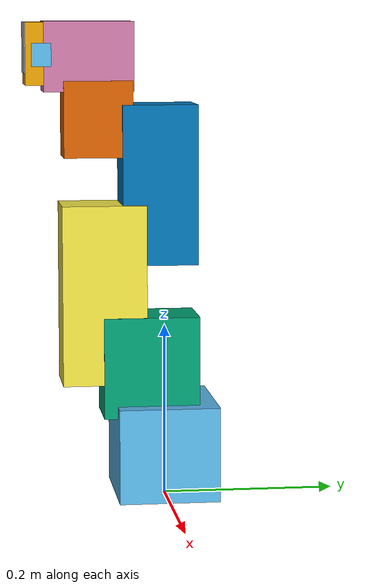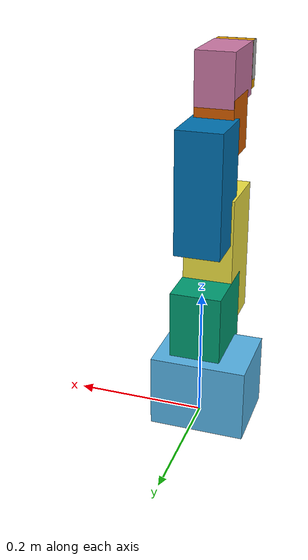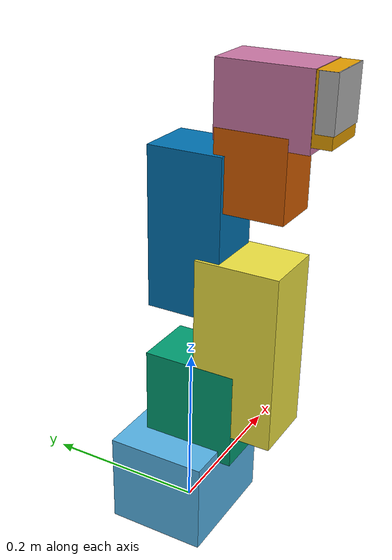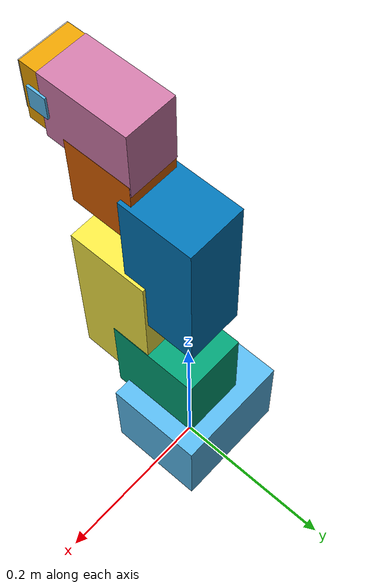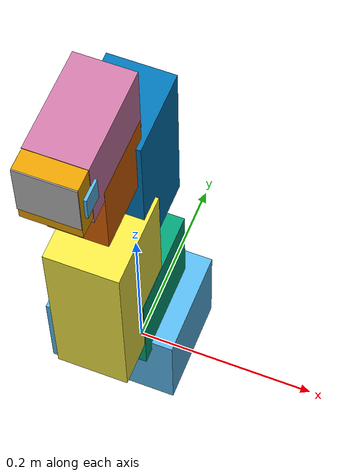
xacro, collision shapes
<?xml version="1.0"?>
<robot xmlns:xacro="http://www.ros.org/wiki/xacro" name="myCobot320">

  <xacro:property name="width" value=".2" />

  <xacro:property name="joint_effort" value="56.0" />
  <xacro:property name="joint_velocity" value="2.792527" />
  <xacro:property name="joint_damping" value="1.0" />
  <xacro:property name="joint_friction" value="0.5" />
  <xacro:property name="base_mass" value="0.12" />
  <xacro:property name="link1_mass" value="0.12" />
  <xacro:property name="link2_mass" value="0.19" />
  <xacro:property name="link3_mass" value="0.16" />
  <xacro:property name="link4_mass" value="0.124" />
  <xacro:property name="link5_mass" value="0.11" />
  <xacro:property name="link6_mass" value="0.0739" />
  <xacro:property name="flange_mass" value="0.035" />
  <xacro:property name="gripper_damping" value="5.0" />
  <xacro:property name="gripper_friction" value="5.0" />
  <xacro:property name="gripper_base_mass" value="0.03" />
  <xacro:property name="gripper_finger_mass" value="0.008" />

  <xacro:macro name="link_inertial" params="xg yg zg mass ixx iyy izz">
    <inertial>
      <origin xyz="${xg} ${yg} ${zg}" rpy="0 0 0" />
      <mass value="${mass}" />
      <inertia ixx="${ixx}" ixy="0.0" ixz="0.0" iyy="${iyy}" iyz="0.0" izz="${izz}" />
    </inertial>
  </xacro:macro>

  <!-- World link -->
  <link name="world" />
  <!-- Junta fija entre world y base_link -->
  <joint name="fixed" type="fixed">
    <parent link="world" />
    <child link="base_link" />
    <origin xyz="0 0 0" rpy="0 0 0" />
  </joint>

  <link name="base_link">
    <xacro:link_inertial xg="0" yg="0" zg="0" mass="${base_mass}" ixx="0.000148" iyy="0.000148"
      izz="0.000096" />

    <visual>
      <geometry>
        <mesh filename="package://clase5/robot_description/mycobot_320_m5_2022/base.dae" />
      </geometry>
      <origin xyz="0.0 0 0 " rpy=" 0 0 1.5708" />
    </visual>
    <collision>
      <geometry>
        <box size="0.11712 0.14372 0.1104" />
      </geometry>
      <origin xyz="-0.01064 0.00002 0.05538" rpy="0 0 1.5708" />
    </collision>
  </link>

  <link name="link1">
    <xacro:link_inertial xg="0" yg="0" zg="-0.078" mass="${link1_mass}" ixx="0.000148"
      iyy="0.000148" izz="0.000096" />

    <visual>
      <geometry>
        <mesh filename="package://clase5/robot_description/mycobot_320_m5_2022/link1.dae" />
      </geometry>

      <origin xyz="0.0 0.0 -0.078 " rpy=" 0 0 1.5708" />
    </visual>
    <collision>
      <geometry>
        <box size="0.1114 0.07697 0.11769" />
      </geometry>
      <origin xyz="-0.00005 -0.01817 -0.01896" rpy="0 0 1.5708" />
    </collision>
  </link>

  <link name="link2">
    <xacro:link_inertial xg="0" yg="0" zg="-0.04" mass="${link2_mass}" ixx="0.000148" iyy="0.000148"
      izz="0.000096" />

    <visual>
      <geometry>
        <mesh filename="package://clase5/robot_description/mycobot_320_m5_2022/link2.dae" />
      </geometry>
      <origin xyz="0.0 0.0 -0.04 " rpy=" 0 1.5708 0" />
    </visual>
    <collision>
      <geometry>
        <box size="0.09742 0.07633 0.20834" />
      </geometry>
      <origin xyz="0.06589 0.00031 -0.01632" rpy="0 1.5708 0" />
    </collision>
  </link>

  <link name="link3">
    <xacro:link_inertial xg="0" yg="0" zg="0.039" mass="${link3_mass}" ixx="0.000148" iyy="0.000148"
      izz="0.000096" />
    <visual>
      <geometry>
        <mesh filename="package://clase5/robot_description/mycobot_320_m5_2022/link3.dae" />
      </geometry>
      <origin xyz="0.0 0.0 0.039 " rpy=" 1.5708 1.5708 1.5708" />
    </visual>
    <collision>
      <geometry>
        <box size="0.087 0.06903 0.18483" />
      </geometry>
      <origin xyz="0.05779 0.00028 0.00755" rpy="1.5708 1.5708 1.5708" />
    </collision>
  </link>

  <link name="link4">
    <xacro:link_inertial xg="0" yg="0.0024" zg="-0.05" mass="${link4_mass}" ixx="0.000103"
      iyy="0.000103" izz="0.000096" />
    <visual>
      <geometry>
        <mesh filename="package://clase5/robot_description/mycobot_320_m5_2022/link4.dae" />
      </geometry>
      <origin xyz="0.0 -0.0024 -0.05" rpy=" 1.5708 1.5708 0" />
    </visual>
    <collision>
      <geometry>
        <box size="0.0796 0.05932 0.0879" />
      </geometry>
      <origin xyz="-0.00002 -0.01367 -0.01055" rpy="1.5708 1.5708 0" />
    </collision>
  </link>

  <link name="link5">
    <xacro:link_inertial xg="0" yg="0" zg="-0.05" mass="${link5_mass}" ixx="0.000103" iyy="0.000103"
      izz="0.000096" />
    <visual>
      <geometry>
        <mesh filename="package://clase5/robot_description/mycobot_320_m5_2022/link5.dae" />
      </geometry>
      <origin xyz="0.0 0.0 -0.05 " rpy=" 0  0 -1.5708" />
    </visual>
    <collision>
      <origin xyz="0 0 -0.01" rpy="0 0 -1.5708" />
      <geometry>
        <box size="0.103 0.059 0.080" />
      </geometry>
    </collision>
  </link>

  <link name="link6">
    <xacro:link_inertial xg="0" yg="0" zg="-0.0115" mass="${link6_mass}" ixx="0.00006649"
      iyy="0.00006649" izz="0.000096" />
    <visual>
      <geometry>
        <mesh filename="package://clase5/robot_description/mycobot_320_m5_2022/link6.dae" />
      </geometry>
      <origin xyz="0.0 0.0 -0.0115 " rpy=" 1.5708 1.5708 0" />
    </visual>
    <collision>
      <geometry>
        <box size="0.0192 0.05816 0.05816" />
      </geometry>
      <origin xyz="0.00010 -0.00020 -0.00165" rpy="1.5708 1.5708 0" />
    </collision>
  </link>

  <joint name="joint1" type="revolute">
    <axis xyz="0 0 1" />
    <limit effort="1000.0" lower="-2.93" upper="2.93" velocity="10" />
    <parent link="base_link" />
    <child link="link1" />
    <origin xyz="0 0 0.1739" rpy="0 0 0" />
    <dynamics damping="${joint_damping}" friction="${joint_friction}" />
  </joint>

  <joint name="joint2" type="revolute">
    <axis xyz="0 0 1" />
    <limit effort="1000.0" lower="-2.35" upper="2.35" velocity="10" />
    <parent link="link1" />
    <child link="link2" />
    <origin xyz="0 -0.08878 0" rpy="0 -1.5708 1.5708" />
    <dynamics damping="${joint_damping}" friction="${joint_friction}" />
  </joint>

  <joint name="joint3" type="revolute">
    <axis xyz=" 0 0 1" />
    <limit effort="1000.0" lower="-2.53" upper="2.53" velocity="10" />
    <parent link="link2" />
    <child link="link3" />
    <origin xyz="0.135 0 -0.08878   " rpy="0 0 0" />
    <dynamics damping="${joint_damping}" friction="${joint_friction}" />
  </joint>

  <joint name="joint4" type="revolute">
    <axis xyz=" 0 0 1" />
    <limit effort="1000.0" lower="-2.53" upper="2.53" velocity="10" />
    <parent link="link3" />
    <child link="link4" />
    <origin xyz="0.120 0 0.08878 " rpy=" 0 0 1.57080" />
    <dynamics damping="${joint_damping}" friction="${joint_friction}" />
  </joint>

  <joint name="joint5" type="revolute">
    <axis xyz="0 0 1" />
    <limit effort="1000.0" lower="-2.93" upper="2.93" velocity="10" />
    <parent link="link4" />
    <child link="link5" />
    <origin xyz="0 -0.095 0.0" rpy="1.5708 0 0" />
    <dynamics damping="${joint_damping}" friction="${joint_friction}" />
  </joint>

  <joint name="joint6" type="revolute">
    <axis xyz="0 0 1" />
    <limit effort="1000.0" lower="-3.14" upper="3.14" velocity="10" />
    <parent link="link5" />
    <child link="link6" />
    <origin xyz="0 0.0655 0.0" rpy="-1.5708 0 0" />
    <dynamics damping="${joint_damping}" friction="${joint_friction}" />
  </joint>

  <link name="gripper_base">
    <xacro:link_inertial xg="0" yg="0" zg="-0.012" mass="${gripper_base_mass}" ixx="0.00001"
      iyy="0.00001" izz="0.00001" />
    <visual>
      <geometry>
      <mesh filename="package://clase5/robot_description/adaptive_gripper/gripper_base.dae"/>
      </geometry>
    <origin xyz = "0.0 0 -0.012 " rpy = " 0 0 0"/>
    </visual>
    <collision>
      <geometry>
        <box size="0.058 0.07152 0.0537" />
      </geometry>
      <origin xyz="0 0.00644 -0.02005" rpy="0 0 0" />
    </collision>
  </link>

  <link name="gripper_left1">
    <xacro:link_inertial xg="0.039" yg="-0.0133" zg="-0.012" mass="${gripper_finger_mass}"
      ixx="0.000002" iyy="0.000002" izz="0.000002" />
    <visual>
      <geometry>
      <mesh filename="package://clase5/robot_description/adaptive_gripper/gripper_left1.dae"/>
      </geometry>
    <origin xyz = "0.039 -0.0133 -0.012 " rpy = " 0 0 0"/>
    </visual>
    <collision>
      <geometry>
        <box size="0.05926 0.02637 0.02233" />
      </geometry>
      <origin xyz="0.03687 -0.0133 -0.01117" rpy="0 0 0" />
    </collision>
  </link>

  <link name="gripper_left2">
    <xacro:link_inertial xg="0.005" yg="-0.0195" zg="-0.012" mass="${gripper_finger_mass}"
      ixx="0.000002" iyy="0.000002" izz="0.000002" />
    <visual>
      <geometry>
      <mesh filename="package://clase5/robot_description/adaptive_gripper/gripper_left2.dae"/>
      </geometry>
    <origin xyz = "0.005 -0.0195 -0.012 " rpy = " 0 0 0"/>
    </visual>
    <collision>
      <geometry>
        <box size="0.04001 0.02 0.009" />
      </geometry>
      <origin xyz="0.00497 -0.0226 -0.012" rpy="0 0 0" />
    </collision>
  </link>

  <link name="gripper_left3">
    <xacro:link_inertial xg="0.012" yg="0.0025" zg="-0.012" mass="${gripper_finger_mass}"
      ixx="0.000002" iyy="0.000002" izz="0.000002" />
    <visual>
      <geometry>
      <mesh filename="package://clase5/robot_description/adaptive_gripper/gripper_left3.dae"/>
      </geometry>
    <origin xyz = "0.012 0.0025 -0.012 " rpy = " 0 0 0"/>
    </visual>
    <collision>
      <geometry>
        <box size="0.005 0.04017 0.04014" />
      </geometry>
      <origin xyz="0.0145 0.00834 -0.01785" rpy="0 0 0" />
    </collision>
  </link>

  <link name="gripper_right1">
    <xacro:link_inertial xg="-0.039" yg="-0.0133" zg="-0.012" mass="${gripper_finger_mass}"
      ixx="0.000002" iyy="0.000002" izz="0.000002" />
    <visual>
      <geometry>
      <mesh filename="package://clase5/robot_description/adaptive_gripper/gripper_right1.dae"/>
      </geometry>
    <origin xyz = "-0.039 -0.0133 -0.012 " rpy = " 0 0 0"/>
    </visual>
    <collision>
      <geometry>
        <box size="0.05926 0.02637 0.02233" />
      </geometry>
      <origin xyz="-0.04113 -0.0133 -0.01117" rpy="0 0 0" />
    </collision>
  </link>

  <link name="gripper_right2">
    <xacro:link_inertial xg="-0.005" yg="-0.0195" zg="-0.012" mass="${gripper_finger_mass}"
      ixx="0.000002" iyy="0.000002" izz="0.000002" />
    <visual>
      <geometry>
      <mesh filename="package://clase5/robot_description/adaptive_gripper/gripper_right2.dae"/>
      </geometry>
    <origin xyz = "-0.005 -0.0195 -0.012 " rpy = " 0 0 0"/>
    </visual>
    <collision>
      <geometry>
        <box size="0.04001 0.02 0.009" />
      </geometry>
      <origin xyz="-0.00503 -0.0226 -0.012" rpy="0 0 0" />
    </collision>
  </link>

  <link name="gripper_right3">
    <xacro:link_inertial xg="-0.012" yg="0.0025" zg="-0.012" mass="${gripper_finger_mass}"
      ixx="0.000002" iyy="0.000002" izz="0.000002" />
    <visual>
      <geometry>
      <mesh filename="package://clase5/robot_description/adaptive_gripper/gripper_right3.dae"/>
      </geometry>
    <origin xyz = "-0.012 0.0025 -0.012 " rpy = " 0 0 0"/>
    </visual>
    <collision>
      <geometry>
        <box size="0.005 0.03576 0.0438" />
      </geometry>
      <origin xyz="-0.0095 0.00613 -0.01968" rpy="0 0 0" />
    </collision>
  </link>
  <joint name="link6_to_gripper_base" type="fixed">
    <parent link="link6"/>
    <child link="gripper_base"/>
    <origin xyz="0 0 0" rpy="0 0 0"/>
  </joint>

  <joint name="gripper_controller" type="revolute">
    <axis xyz="0 0 1"/>
    <limit effort = "1000.0" lower = "-0.7" upper = "0.15" velocity = "0"/>
    <parent link="gripper_base"/>
    <child link="gripper_left3"/>
    <origin xyz= "-0.012 0.005 0" rpy = "0 0 0"/>
    <dynamics damping="${gripper_damping}" friction="${gripper_friction}" />
  </joint>

  <joint name="gripper_base_to_gripper_left2" type="revolute">
    <axis xyz="0 0 1"/>
    <limit effort = "1000.0" lower = "-0.8" upper = "0.5" velocity = "0"/>
    <parent link="gripper_base"/>
    <child link="gripper_left2"/>
    <origin xyz= "-0.005 0.027 0" rpy = "0 0 0"/>
    <mimic joint="gripper_controller" multiplier="1.0" offset="0" />
    <dynamics damping="${gripper_damping}" friction="${gripper_friction}" />
  </joint>

  <joint name="gripper_left3_to_gripper_left1" type="revolute">
    <axis xyz="0 0 1"/>
    <limit effort = "1000.0" lower = "-0.5" upper = "0.5" velocity = "0"/>
    <parent link="gripper_left3"/>
    <child link="gripper_left1"/>
    <origin xyz= "-0.027 0.016 0" rpy = "0 0 0"/>
    <mimic joint="gripper_controller" multiplier="-1.0" offset="0" />
    <dynamics damping="${gripper_damping}" friction="${gripper_friction}" />
  </joint>

  <joint name="gripper_base_to_gripper_right3" type="revolute">
    <axis xyz="0 0 1"/>
    <limit effort = "1000.0" lower = "-0.15" upper = "0.7" velocity = "0"/>
    <parent link="gripper_base"/>
    <child link="gripper_right3"/>
    <origin xyz= "0.012 0.005 0" rpy = "0 0 0"/>
    <mimic joint="gripper_controller" multiplier="-1.0" offset="0" />
    <dynamics damping="${gripper_damping}" friction="${gripper_friction}" />
  </joint>

  <joint name="gripper_base_to_gripper_right2" type="revolute">
    <axis xyz="0 0 1"/>
    <limit effort = "1000.0" lower = "-0.5" upper = "0.8" velocity = "0"/>
    <parent link="gripper_base"/>
    <child link="gripper_right2"/>
    <origin xyz= "0.005 0.027 0" rpy = "0 0 0"/>
    <mimic joint="gripper_controller" multiplier="-1.0" offset="0" />
    <dynamics damping="${gripper_damping}" friction="${gripper_friction}" />
  </joint>

  <joint name="gripper_right3_to_gripper_right1" type="revolute">
    <axis xyz="0 0 1"/>
    <limit effort = "1000.0" lower = "-0.5" upper = "0.5" velocity = "0"/>
    <parent link="gripper_right3"/>
    <child link="gripper_right1"/>
    <origin xyz= "0.027 0.016 0" rpy = "0 0 0"/>
    <mimic joint="gripper_controller" multiplier="1.0" offset="0" />
    <dynamics damping="${gripper_damping}" friction="${gripper_friction}" />
  </joint>

  <!--  TCP / PUNTO DE AGARRE *******************-->
  <xacro:property name="tool0_offset" value="0.055" />

  <link name="tool0" />

  <joint name="link6_to_tool0" type="fixed">
    <parent link="link6" />
    <child link="tool0" />
    <origin xyz="0 ${tool0_offset} 0" rpy="-1.5708 0 0" />
  </joint>

  <!--  ROS2 CONTROL *******************-->
  <xacro:arg name="controllers_file" default="$(find clase5)/config/mycobot_320_m5_2022/ros2_controllers.yaml" />

  <!-- Pose inicial: el brazo arranca plegado y estable, no estirado hacia
       arriba, que es la pose desde la que se desploma. Coincide con el
       group_state "listo" del SRDF. -->
  <xacro:macro name="joint_control" params="joint init">
    <joint name="${joint}">
      <command_interface name="effort">
        <param name="min">-${joint_effort}</param>
        <param name="max">${joint_effort}</param>
      </command_interface>
      <state_interface name="position">
        <param name="initial_value">${init}</param>
      </state_interface>
      <state_interface name="velocity" />
      <state_interface name="effort" />
    </joint>
  </xacro:macro>

  <ros2_control name="GazeboSimSystem" type="system">
    <hardware>
      <plugin>gz_ros2_control/GazeboSimSystem</plugin>
    </hardware>
    <xacro:joint_control joint="joint1" init="0.0" />
    <xacro:joint_control joint="joint2" init="-0.6" />
    <xacro:joint_control joint="joint3" init="1.2" />
    <xacro:joint_control joint="joint4" init="0.0" />
    <xacro:joint_control joint="joint5" init="-0.6" />
    <xacro:joint_control joint="joint6" init="0.0" />
  </ros2_control>

  <gazebo>
    <plugin filename="gz_ros2_control-system"
      name="gz_ros2_control::GazeboSimROS2ControlPlugin">
      <parameters>$(arg controllers_file)</parameters>
    </plugin>
  </gazebo>

  <!-- CONFIGURACION DE PLUGINS DE GAZEBO  *******************-->
  <xacro:macro name="apply_joint_force" params="joint">
    <plugin filename="gz-sim-apply-joint-force-system"
      name="gz::sim::systems::ApplyJointForce">
      <joint_name>${joint}</joint_name>
    </plugin>
  </xacro:macro>

  <gazebo>
    <!-- Este plugin publica el estado de las articulaciones -->
    <plugin filename="gz-sim-joint-state-publisher-system"
      name="gz::sim::systems::JointStatePublisher">
    </plugin>

    <!-- Plugins para aplicar fuerzas/torques desde ROS2 a las juntas -->
    <xacro:apply_joint_force joint="joint1" />
    <xacro:apply_joint_force joint="joint2" />
    <xacro:apply_joint_force joint="joint3" />
    <xacro:apply_joint_force joint="joint4" />
    <xacro:apply_joint_force joint="joint5" />
    <xacro:apply_joint_force joint="joint6" />
  </gazebo>

  <!--  CONFIGURACION DE COLISIONES *******************-->
  <!-- Self collision -->
  <gazebo>
    <self_collide>false</self_collide>
  </gazebo>

</robot>
